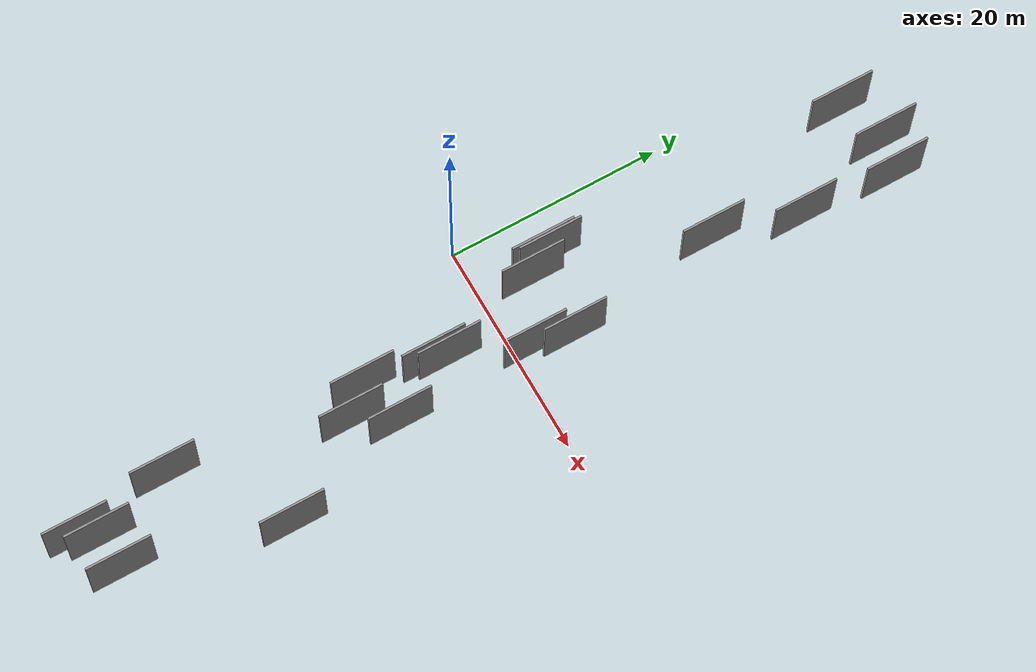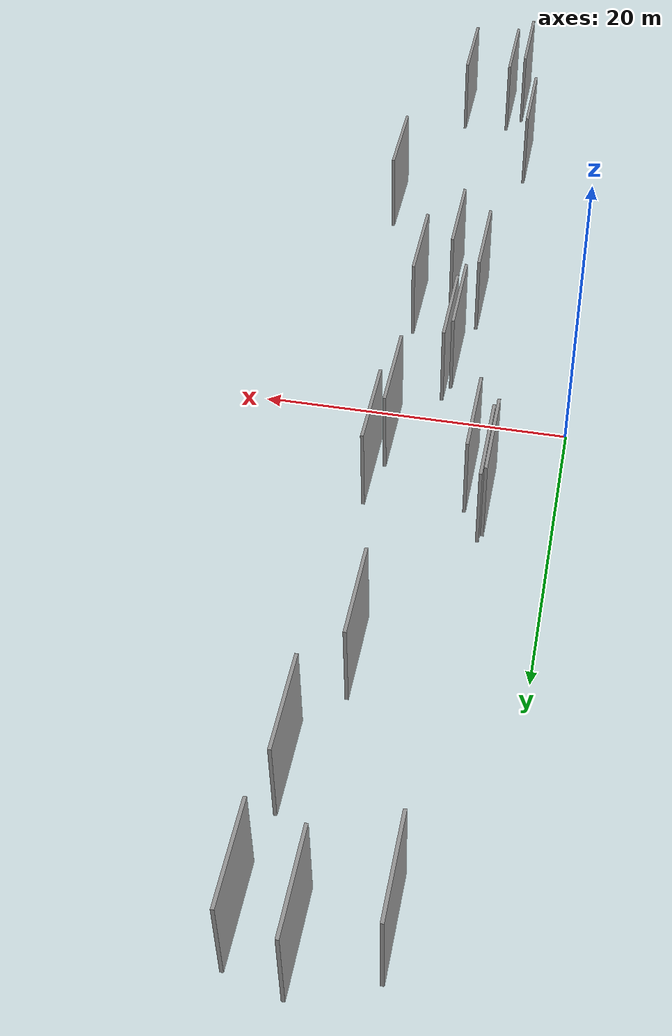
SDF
<sdf version="1.6">
 <world name="default">
  <scene>
   <sky><clouds><speed>12</speed></clouds></sky>
   <ambient>0.4 0.4 0.4 1</ambient>
   <background>0.7 0.7 0.7 1</background>
   <shadows>1</shadows>
  </scene>
  <gravity>0 0 -9.8066</gravity>
  <magnetic_field>6e-06 2.3e-05 -4.2e-05</magnetic_field>
  <physics default="0" name="default_physics" type="ode">
   <ode>
    <solver>
     <type>quick</type>
     <iters>10</iters>
     <sor>1.0</sor>
     <use_dynamic_moi_rescaling>0</use_dynamic_moi_rescaling>
    </solver>
    <constraints>
     <cfm>0</cfm>
     <erp>0.2</erp>
     <contact_max_correcting_vel>100</contact_max_correcting_vel>
     <contact_surface_layer>0.001</contact_surface_layer>
    </constraints>
   </ode>
   <max_step_size>0.004</max_step_size>
   <real_time_factor>1</real_time_factor>
   <real_time_update_rate>250</real_time_update_rate>
  </physics>
  <light name="sun" type="directional">
   <pose>0 0 10 0 0 0</pose>
   <diffuse>0.8 0.8 0.8 1</diffuse>
   <specular>0.2 0.2 0.2 1</specular>
   <attenuation>
    <range>1000</range>
    <constant>0.9</constant>
    <linear>0.01</linear>
    <quadratic>0.001</quadratic>
   </attenuation>
   <direction>-0.5 0.1 -0.9</direction>
  </light>
  <model name="grey_wall_1">
   <static>1</static>
   <pose>12.6105 36.4581 0.0 0.000000 0.000000 1.570796</pose>
   <link name="link">
    <pose>0 0 3.00 0 0 0</pose>
    <collision name="collision"><geometry><box><size>6.00 0.2 6.00</size></box></geometry></collision>
    <visual name="visual">
     <cast_shadows>0</cast_shadows>
     <geometry><box><size>6.00 0.2 6.00</size></box></geometry>
     <material>
      <script>
       <uri>model://grey_wall/materials/scripts</uri>
       <uri>model://grey_wall/materials/textures</uri>
       <name>vrc/grey_wall</name>
      </script>
     </material>
    </visual>
   </link>
  </model>
  <model name="grey_wall_2">
   <static>1</static>
   <pose>7.3107 -12.6159 0.0 0.000000 0.000000 1.570796</pose>
   <link name="link">
    <pose>0 0 3.00 0 0 0</pose>
    <collision name="collision"><geometry><box><size>6.00 0.2 6.00</size></box></geometry></collision>
    <visual name="visual">
     <cast_shadows>0</cast_shadows>
     <geometry><box><size>6.00 0.2 6.00</size></box></geometry>
     <material>
      <script>
       <uri>model://grey_wall/materials/scripts</uri>
       <uri>model://grey_wall/materials/textures</uri>
       <name>vrc/grey_wall</name>
      </script>
     </material>
    </visual>
   </link>
  </model>
  <model name="grey_wall_3">
   <static>1</static>
   <pose>8.4185 -37.9059 0.0 0.000000 0.000000 1.570796</pose>
   <link name="link">
    <pose>0 0 3.00 0 0 0</pose>
    <collision name="collision"><geometry><box><size>6.00 0.2 6.00</size></box></geometry></collision>
    <visual name="visual">
     <cast_shadows>0</cast_shadows>
     <geometry><box><size>6.00 0.2 6.00</size></box></geometry>
     <material>
      <script>
       <uri>model://grey_wall/materials/scripts</uri>
       <uri>model://grey_wall/materials/textures</uri>
       <name>vrc/grey_wall</name>
      </script>
     </material>
    </visual>
   </link>
  </model>
  <model name="grey_wall_4">
   <static>1</static>
   <pose>11.8696 5.2201 0.0 0.000000 0.000000 1.570796</pose>
   <link name="link">
    <pose>0 0 3.00 0 0 0</pose>
    <collision name="collision"><geometry><box><size>6.00 0.2 6.00</size></box></geometry></collision>
    <visual name="visual">
     <cast_shadows>0</cast_shadows>
     <geometry><box><size>6.00 0.2 6.00</size></box></geometry>
     <material>
      <script>
       <uri>model://grey_wall/materials/scripts</uri>
       <uri>model://grey_wall/materials/textures</uri>
       <name>vrc/grey_wall</name>
      </script>
     </material>
    </visual>
   </link>
  </model>
  <model name="grey_wall_5">
   <static>1</static>
   <pose>8.1172 -6.2833 0.0 0.000000 0.000000 1.570796</pose>
   <link name="link">
    <pose>0 0 3.00 0 0 0</pose>
    <collision name="collision"><geometry><box><size>6.00 0.2 6.00</size></box></geometry></collision>
    <visual name="visual">
     <cast_shadows>0</cast_shadows>
     <geometry><box><size>6.00 0.2 6.00</size></box></geometry>
     <material>
      <script>
       <uri>model://grey_wall/materials/scripts</uri>
       <uri>model://grey_wall/materials/textures</uri>
       <name>vrc/grey_wall</name>
      </script>
     </material>
    </visual>
   </link>
  </model>
  <model name="grey_wall_6">
   <static>1</static>
   <pose>9.4708 -14.8449 0.0 0.000000 0.000000 1.570796</pose>
   <link name="link">
    <pose>0 0 3.00 0 0 0</pose>
    <collision name="collision"><geometry><box><size>6.00 0.2 6.00</size></box></geometry></collision>
    <visual name="visual">
     <cast_shadows>0</cast_shadows>
     <geometry><box><size>6.00 0.2 6.00</size></box></geometry>
     <material>
      <script>
       <uri>model://grey_wall/materials/scripts</uri>
       <uri>model://grey_wall/materials/textures</uri>
       <name>vrc/grey_wall</name>
      </script>
     </material>
    </visual>
   </link>
  </model>
  <model name="grey_wall_7">
   <static>1</static>
   <pose>6.1593 -30.7250 0.0 0.000000 0.000000 1.570796</pose>
   <link name="link">
    <pose>0 0 3.00 0 0 0</pose>
    <collision name="collision"><geometry><box><size>6.00 0.2 6.00</size></box></geometry></collision>
    <visual name="visual">
     <cast_shadows>0</cast_shadows>
     <geometry><box><size>6.00 0.2 6.00</size></box></geometry>
     <material>
      <script>
       <uri>model://grey_wall/materials/scripts</uri>
       <uri>model://grey_wall/materials/textures</uri>
       <name>vrc/grey_wall</name>
      </script>
     </material>
    </visual>
   </link>
  </model>
  <model name="grey_wall_8">
   <static>1</static>
   <pose>4.8755 35.7219 0.0 0.000000 0.000000 1.570796</pose>
   <link name="link">
    <pose>0 0 3.00 0 0 0</pose>
    <collision name="collision"><geometry><box><size>6.00 0.2 6.00</size></box></geometry></collision>
    <visual name="visual">
     <cast_shadows>0</cast_shadows>
     <geometry><box><size>6.00 0.2 6.00</size></box></geometry>
     <material>
      <script>
       <uri>model://grey_wall/materials/scripts</uri>
       <uri>model://grey_wall/materials/textures</uri>
       <name>vrc/grey_wall</name>
      </script>
     </material>
    </visual>
   </link>
  </model>
  <model name="grey_wall_9">
   <static>1</static>
   <pose>9.8941 19.8571 0.0 0.000000 0.000000 1.570796</pose>
   <link name="link">
    <pose>0 0 3.00 0 0 0</pose>
    <collision name="collision"><geometry><box><size>6.00 0.2 6.00</size></box></geometry></collision>
    <visual name="visual">
     <cast_shadows>0</cast_shadows>
     <geometry><box><size>6.00 0.2 6.00</size></box></geometry>
     <material>
      <script>
       <uri>model://grey_wall/materials/scripts</uri>
       <uri>model://grey_wall/materials/textures</uri>
       <name>vrc/grey_wall</name>
      </script>
     </material>
    </visual>
   </link>
  </model>
  <model name="grey_wall_10">
   <static>1</static>
   <pose>7.3531 -39.3836 0.0 0.000000 0.000000 1.570796</pose>
   <link name="link">
    <pose>0 0 3.00 0 0 0</pose>
    <collision name="collision"><geometry><box><size>6.00 0.2 6.00</size></box></geometry></collision>
    <visual name="visual">
     <cast_shadows>0</cast_shadows>
     <geometry><box><size>6.00 0.2 6.00</size></box></geometry>
     <material>
      <script>
       <uri>model://grey_wall/materials/scripts</uri>
       <uri>model://grey_wall/materials/textures</uri>
       <name>vrc/grey_wall</name>
      </script>
     </material>
    </visual>
   </link>
  </model>
  <model name="grey_wall_11">
   <static>1</static>
   <pose>11.6187 -11.3941 0.0 0.000000 0.000000 1.570796</pose>
   <link name="link">
    <pose>0 0 3.00 0 0 0</pose>
    <collision name="collision"><geometry><box><size>6.00 0.2 6.00</size></box></geometry></collision>
    <visual name="visual">
     <cast_shadows>0</cast_shadows>
     <geometry><box><size>6.00 0.2 6.00</size></box></geometry>
     <material>
      <script>
       <uri>model://grey_wall/materials/scripts</uri>
       <uri>model://grey_wall/materials/textures</uri>
       <name>vrc/grey_wall</name>
      </script>
     </material>
    </visual>
   </link>
  </model>
  <model name="grey_wall_12">
   <static>1</static>
   <pose>12.0836 27.6782 0.0 0.000000 0.000000 1.570796</pose>
   <link name="link">
    <pose>0 0 3.00 0 0 0</pose>
    <collision name="collision"><geometry><box><size>6.00 0.2 6.00</size></box></geometry></collision>
    <visual name="visual">
     <cast_shadows>0</cast_shadows>
     <geometry><box><size>6.00 0.2 6.00</size></box></geometry>
     <material>
      <script>
       <uri>model://grey_wall/materials/scripts</uri>
       <uri>model://grey_wall/materials/textures</uri>
       <name>vrc/grey_wall</name>
      </script>
     </material>
    </visual>
   </link>
  </model>
  <model name="grey_wall_13">
   <static>1</static>
   <pose>4.4189 7.0641 0.0 0.000000 0.000000 1.570796</pose>
   <link name="link">
    <pose>0 0 3.00 0 0 0</pose>
    <collision name="collision"><geometry><box><size>6.00 0.2 6.00</size></box></geometry></collision>
    <visual name="visual">
     <cast_shadows>0</cast_shadows>
     <geometry><box><size>6.00 0.2 6.00</size></box></geometry>
     <material>
      <script>
       <uri>model://grey_wall/materials/scripts</uri>
       <uri>model://grey_wall/materials/textures</uri>
       <name>vrc/grey_wall</name>
      </script>
     </material>
    </visual>
   </link>
  </model>
  <model name="grey_wall_14">
   <static>1</static>
   <pose>11.1534 1.7443 0.0 0.000000 0.000000 1.570796</pose>
   <link name="link">
    <pose>0 0 3.00 0 0 0</pose>
    <collision name="collision"><geometry><box><size>6.00 0.2 6.00</size></box></geometry></collision>
    <visual name="visual">
     <cast_shadows>0</cast_shadows>
     <geometry><box><size>6.00 0.2 6.00</size></box></geometry>
     <material>
      <script>
       <uri>model://grey_wall/materials/scripts</uri>
       <uri>model://grey_wall/materials/textures</uri>
       <name>vrc/grey_wall</name>
      </script>
     </material>
    </visual>
   </link>
  </model>
  <model name="grey_wall_15">
   <static>1</static>
   <pose>9.3644 37.3362 0.0 0.000000 0.000000 1.570796</pose>
   <link name="link">
    <pose>0 0 3.00 0 0 0</pose>
    <collision name="collision"><geometry><box><size>6.00 0.2 6.00</size></box></geometry></collision>
    <visual name="visual">
     <cast_shadows>0</cast_shadows>
     <geometry><box><size>6.00 0.2 6.00</size></box></geometry>
     <material>
      <script>
       <uri>model://grey_wall/materials/scripts</uri>
       <uri>model://grey_wall/materials/textures</uri>
       <name>vrc/grey_wall</name>
      </script>
     </material>
    </visual>
   </link>
  </model>
  <model name="grey_wall_16">
   <static>1</static>
   <pose>5.5523 4.7514 0.0 0.000000 0.000000 1.570796</pose>
   <link name="link">
    <pose>0 0 3.00 0 0 0</pose>
    <collision name="collision"><geometry><box><size>6.00 0.2 6.00</size></box></geometry></collision>
    <visual name="visual">
     <cast_shadows>0</cast_shadows>
     <geometry><box><size>6.00 0.2 6.00</size></box></geometry>
     <material>
      <script>
       <uri>model://grey_wall/materials/scripts</uri>
       <uri>model://grey_wall/materials/textures</uri>
       <name>vrc/grey_wall</name>
      </script>
     </material>
    </visual>
   </link>
  </model>
  <model name="grey_wall_17">
   <static>1</static>
   <pose>11.7706 -37.5896 0.0 0.000000 0.000000 1.570796</pose>
   <link name="link">
    <pose>0 0 3.00 0 0 0</pose>
    <collision name="collision"><geometry><box><size>6.00 0.2 6.00</size></box></geometry></collision>
    <visual name="visual">
     <cast_shadows>0</cast_shadows>
     <geometry><box><size>6.00 0.2 6.00</size></box></geometry>
     <material>
      <script>
       <uri>model://grey_wall/materials/scripts</uri>
       <uri>model://grey_wall/materials/textures</uri>
       <name>vrc/grey_wall</name>
      </script>
     </material>
    </visual>
   </link>
  </model>
  <model name="grey_wall_18">
   <static>1</static>
   <pose>8.5319 -5.0126 0.0 0.000000 0.000000 1.570796</pose>
   <link name="link">
    <pose>0 0 3.00 0 0 0</pose>
    <collision name="collision"><geometry><box><size>6.00 0.2 6.00</size></box></geometry></collision>
    <visual name="visual">
     <cast_shadows>0</cast_shadows>
     <geometry><box><size>6.00 0.2 6.00</size></box></geometry>
     <material>
      <script>
       <uri>model://grey_wall/materials/scripts</uri>
       <uri>model://grey_wall/materials/textures</uri>
       <name>vrc/grey_wall</name>
      </script>
     </material>
    </visual>
   </link>
  </model>
  <model name="grey_wall_19">
   <static>1</static>
   <pose>4.1884 6.5102 0.0 0.000000 0.000000 1.570796</pose>
   <link name="link">
    <pose>0 0 3.00 0 0 0</pose>
    <collision name="collision"><geometry><box><size>6.00 0.2 6.00</size></box></geometry></collision>
    <visual name="visual">
     <cast_shadows>0</cast_shadows>
     <geometry><box><size>6.00 0.2 6.00</size></box></geometry>
     <material>
      <script>
       <uri>model://grey_wall/materials/scripts</uri>
       <uri>model://grey_wall/materials/textures</uri>
       <name>vrc/grey_wall</name>
      </script>
     </material>
    </visual>
   </link>
  </model>
  <model name="grey_wall_20">
   <static>1</static>
   <pose>15.2035 -23.4474 0.0 0.000000 0.000000 1.570796</pose>
   <link name="link">
    <pose>0 0 3.00 0 0 0</pose>
    <collision name="collision"><geometry><box><size>6.00 0.2 6.00</size></box></geometry></collision>
    <visual name="visual">
     <cast_shadows>0</cast_shadows>
     <geometry><box><size>6.00 0.2 6.00</size></box></geometry>
     <material>
      <script>
       <uri>model://grey_wall/materials/scripts</uri>
       <uri>model://grey_wall/materials/textures</uri>
       <name>vrc/grey_wall</name>
      </script>
     </material>
    </visual>
   </link>
  </model>
 </world>
</sdf>
